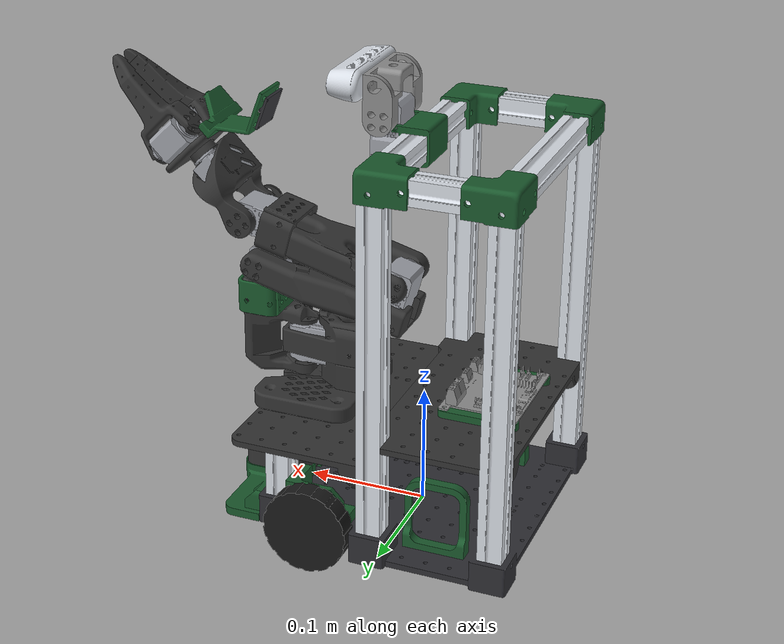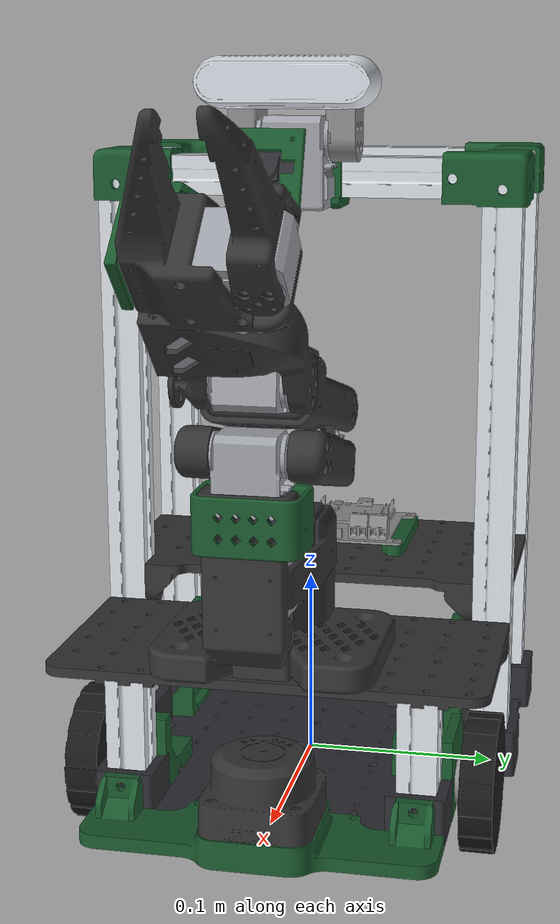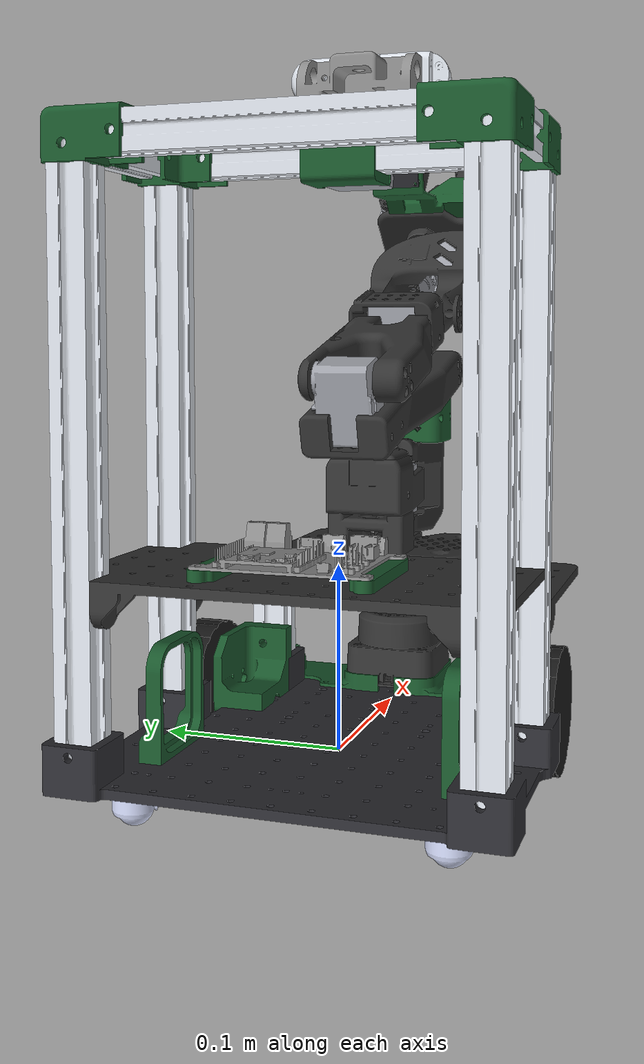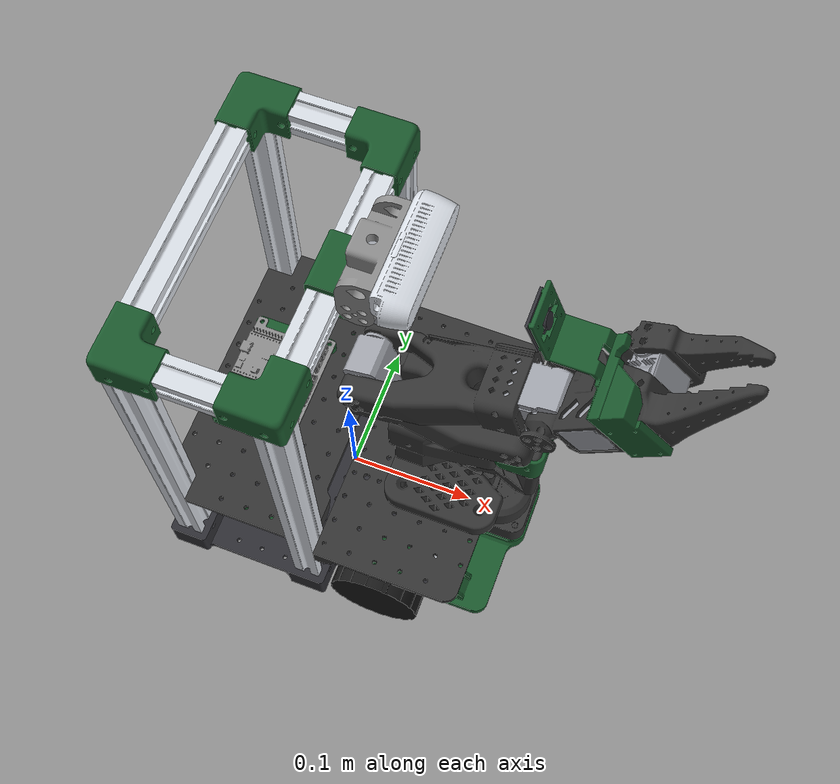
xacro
<?xml version="1.0" ?>
<robot name="llmy_root" xmlns:xacro="http://www.ros.org/wiki/xacro">

  <!-- use_sim: when true, pulls in Gazebo ros2_control + sdf extensions.
       Hardware launches should override to false. -->
  <xacro:arg name="use_sim" default="true"/>

  <xacro:include filename="$(find llmy_description)/urdf/materials.xacro" />
  <xacro:if value="$(arg use_sim)">
    <xacro:include filename="$(find llmy_description)/urdf/LLMy.ros2control" />
    <xacro:include filename="$(find llmy_description)/urdf/LLMy.gazebo" />
  </xacro:if>
  <!-- ========================================== LINKS ==========================================-->
  <link name="base_link">
    <inertial>
      <origin xyz="-0.003179 -0.000009 0.005401" rpy="0 0 0"/>
      <mass value="2.227457140108448"/>
      <inertia ixx="0.010888" iyy="0.009782" izz="0.020514" ixy="-5e-06" iyz="0.0" ixz="-3.3e-05"/>
    </inertial>
    <visual>
      <origin xyz="0.000000 0.000000 0.000000" rpy="0 0 0"/>
      <geometry><mesh filename="file://$(find llmy_description)/meshes/base_link.stl" scale="0.001 0.001 0.001"/></geometry>
      <material name="nylon_darkgrey"/>
    </visual>
    <collision>
      <origin xyz="0.000000 0.000000 0.000000" rpy="0 0 0"/>
      <geometry><mesh filename="file://$(find llmy_description)/meshes/base_link.stl" scale="0.001 0.001 0.001"/></geometry>
    </collision>
  </link>

  <link name="right_motor_mount_1">
    <inertial>
      <origin xyz="0.023782 0.003969 0.015577" rpy="0 0 0"/>
      <mass value="0.19524814724461273"/>
      <inertia ixx="4.7e-05" iyy="7.3e-05" izz="6.1e-05" ixy="-5e-06" iyz="5e-06" ixz="-1.5e-05"/>
    </inertial>
    <visual>
      <origin xyz="-0.040000 0.080000 -0.005000" rpy="0 0 0"/>
      <geometry><mesh filename="file://$(find llmy_description)/meshes/right_motor_mount_1.stl" scale="0.001 0.001 0.001"/></geometry>
      <material name="metallic_green"/>
    </visual>
    <collision>
      <origin xyz="-0.040000 0.080000 -0.005000" rpy="0 0 0"/>
      <geometry><mesh filename="file://$(find llmy_description)/meshes/right_motor_mount_1.stl" scale="0.001 0.001 0.001"/></geometry>
    </collision>
  </link>

  <link name="right_motor_1">
    <inertial>
      <origin xyz="-0.007742 -0.010688 -0.004446" rpy="0 0 0"/>
      <mass value="0.06550661857714346"/>
      <inertia ixx="4e-06" iyy="5e-06" izz="4e-06" ixy="0.0" iyz="-0.0" ixz="-0.0"/>
    </inertial>
    <visual>
      <origin xyz="-0.067864 0.085855 -0.018700" rpy="0 0 0"/>
      <geometry><mesh filename="file://$(find llmy_description)/meshes/wheel_right_in_1.stl" scale="0.001 0.001 0.001"/></geometry>
      <material name="generic_grey"/>
    </visual>
    <collision>
      <origin xyz="-0.067864 0.085855 -0.018700" rpy="0 0 0"/>
      <geometry><mesh filename="file://$(find llmy_description)/meshes/wheel_right_in_1.stl" scale="0.001 0.001 0.001"/></geometry>
    </collision>
  </link>

  <link name="wheel_right_1">
    <inertial>
      <origin xyz="-0.000000 0.003281 0.000000" rpy="0 0 0"/>
      <mass value="0.47698614111454785"/>
      <inertia ixx="0.000173" iyy="0.000323" izz="0.000173" ixy="0.0" iyz="0.0" ixz="0.0"/>
    </inertial>
    <visual>
      <origin xyz="-0.060143 0.105270 -0.014242" rpy="0 0 0"/>
      <geometry><mesh filename="file://$(find llmy_description)/meshes/wheel_right_out_1.stl" scale="0.001 0.001 0.001"/></geometry>
      <material name="wheel_black"/>
    </visual>
    <collision>
      <origin xyz="-0.060143 0.105270 -0.014242" rpy="0 0 0"/>
      <geometry><mesh filename="file://$(find llmy_description)/meshes/wheel_right_out_1.stl" scale="0.001 0.001 0.001"/></geometry>
    </collision>
  </link>

  <link name="left_motor_mount_1">
    <inertial>
      <origin xyz="0.023783 -0.003969 0.015577" rpy="0 0 0"/>
      <mass value="0.19524842528531677"/>
      <inertia ixx="4.7e-05" iyy="7.3e-05" izz="6.1e-05" ixy="5e-06" iyz="-5e-06" ixz="-1.5e-05"/>
    </inertial>
    <visual>
      <origin xyz="-0.040000 -0.080000 -0.005000" rpy="0 0 0"/>
      <geometry><mesh filename="file://$(find llmy_description)/meshes/left_motor_mount_1.stl" scale="0.001 0.001 0.001"/></geometry>
      <material name="metallic_green"/>
    </visual>
    <collision>
      <origin xyz="-0.040000 -0.080000 -0.005000" rpy="0 0 0"/>
      <geometry><mesh filename="file://$(find llmy_description)/meshes/left_motor_mount_1.stl" scale="0.001 0.001 0.001"/></geometry>
    </collision>
  </link>

  <link name="left_motor_1">
    <inertial>
      <origin xyz="0.007701 0.010688 -0.004446" rpy="0 0 0"/>
      <mass value="0.06550661857714346"/>
      <inertia ixx="4e-06" iyy="5e-06" izz="4e-06" ixy="-0.0" iyz="0.0" ixz="-0.0"/>
    </inertial>
    <visual>
      <origin xyz="-0.052275 -0.085855 -0.018700" rpy="0 0 0"/>
      <geometry><mesh filename="file://$(find llmy_description)/meshes/wheel_left_in_1.stl" scale="0.001 0.001 0.001"/></geometry>
      <material name="generic_grey"/>
    </visual>
    <collision>
      <origin xyz="-0.052275 -0.085855 -0.018700" rpy="0 0 0"/>
      <geometry><mesh filename="file://$(find llmy_description)/meshes/wheel_left_in_1.stl" scale="0.001 0.001 0.001"/></geometry>
    </collision>
  </link>

  <link name="wheel_left_1">
    <inertial>
      <origin xyz="0.000000 -0.003281 0.000000" rpy="0 0 0"/>
      <mass value="0.47698614111454785"/>
      <inertia ixx="0.000173" iyy="0.000323" izz="0.000173" ixy="-0.0" iyz="0.0" ixz="0.0"/>
    </inertial>
    <visual>
      <origin xyz="-0.059996 -0.105270 -0.014242" rpy="0 0 0"/>
      <geometry><mesh filename="file://$(find llmy_description)/meshes/wheel_left_out_1.stl" scale="0.001 0.001 0.001"/></geometry>
      <material name="wheel_black"/>
    </visual>
    <collision>
      <origin xyz="-0.059996 -0.105270 -0.014242" rpy="0 0 0"/>
      <geometry><mesh filename="file://$(find llmy_description)/meshes/wheel_left_out_1.stl" scale="0.001 0.001 0.001"/></geometry>
    </collision>
  </link>

  <link name="right_caster_1">
    <inertial>
      <origin xyz="-0.000000 0.007747 -0.008951" rpy="0 0 0"/>
      <mass value="0.04903387471960177"/>
      <inertia ixx="3e-06" iyy="3e-06" izz="3e-06" ixy="-0.0" iyz="0.0" ixz="0.0"/>
    </inertial>
    <visual>
      <origin xyz="0.080000 -0.072253 0.000000" rpy="0 0 0"/>
      <geometry><mesh filename="file://$(find llmy_description)/meshes/right_caster_1.stl" scale="0.001 0.001 0.001"/></geometry>
      <material name="caster_blue"/>
    </visual>
    <collision>
      <origin xyz="0.080000 -0.072253 0.000000" rpy="0 0 0"/>
      <geometry><mesh filename="file://$(find llmy_description)/meshes/right_caster_1.stl" scale="0.001 0.001 0.001"/></geometry>
    </collision>
  </link>

  <link name="left_caster_1">
    <inertial>
      <origin xyz="-0.000000 -0.007747 -0.008951" rpy="0 0 0"/>
      <mass value="0.04903387471960177"/>
      <inertia ixx="3e-06" iyy="3e-06" izz="3e-06" ixy="-0.0" iyz="0.0" ixz="0.0"/>
    </inertial>
    <visual>
      <origin xyz="0.080000 0.072253 0.000000" rpy="0 0 0"/>
      <geometry><mesh filename="file://$(find llmy_description)/meshes/left_caster_1.stl" scale="0.001 0.001 0.001"/></geometry>
      <material name="caster_blue"/>
    </visual>
    <collision>
      <origin xyz="0.080000 0.072253 0.000000" rpy="0 0 0"/>
      <geometry><mesh filename="file://$(find llmy_description)/meshes/left_caster_1.stl" scale="0.001 0.001 0.001"/></geometry>
    </collision>
  </link>

  <link name="right_baseus_mount_v1_1">
    <inertial>
      <origin xyz="0.019691 -0.001860 0.023385" rpy="0 0 0"/>
      <mass value="0.0655308096957003"/>
      <inertia ixx="3.1e-05" iyy="5.4e-05" izz="2.4e-05" ixy="0.0" iyz="1e-06" ixz="-0.0"/>
    </inertial>
    <visual>
      <origin xyz="0.060000 -0.080000 -0.005000" rpy="0 0 0"/>
      <geometry><mesh filename="file://$(find llmy_description)/meshes/right_battery_mount_1.stl" scale="0.001 0.001 0.001"/></geometry>
      <material name="metallic_green"/>
    </visual>
    <collision>
      <origin xyz="0.060000 -0.080000 -0.005000" rpy="0 0 0"/>
      <geometry><mesh filename="file://$(find llmy_description)/meshes/right_battery_mount_1.stl" scale="0.001 0.001 0.001"/></geometry>
    </collision>
  </link>

  <link name="left_baseus_mount_v1_1">
    <inertial>
      <origin xyz="0.019691 0.001860 0.023385" rpy="0 0 0"/>
      <mass value="0.06553077893811926"/>
      <inertia ixx="3.1e-05" iyy="5.4e-05" izz="2.4e-05" ixy="-0.0" iyz="-1e-06" ixz="-0.0"/>
    </inertial>
    <visual>
      <origin xyz="0.060000 0.080000 -0.005000" rpy="0 0 0"/>
      <geometry><mesh filename="file://$(find llmy_description)/meshes/left_battery_mount_1.stl" scale="0.001 0.001 0.001"/></geometry>
      <material name="metallic_green"/>
    </visual>
    <collision>
      <origin xyz="0.060000 0.080000 -0.005000" rpy="0 0 0"/>
      <geometry><mesh filename="file://$(find llmy_description)/meshes/left_battery_mount_1.stl" scale="0.001 0.001 0.001"/></geometry>
    </collision>
  </link>

  <link name="llmy_lidar_base_v1_1">
    <inertial>
      <origin xyz="0.015962 -0.073645 -0.015094" rpy="0 0 0"/>
      <mass value="0.3979913592232491"/>
      <inertia ixx="0.001129" iyy="6.9e-05" izz="0.001183" ixy="-0.0" iyz="-0.0" ixz="6e-06"/>
    </inertial>
    <visual>
      <origin xyz="-0.110000 -0.073755 -0.020000" rpy="0 0 0"/>
      <geometry><mesh filename="file://$(find llmy_description)/meshes/lidar_mount_1.stl" scale="0.001 0.001 0.001"/></geometry>
      <material name="metallic_green"/>
    </visual>
    <collision>
      <origin xyz="-0.110000 -0.073755 -0.020000" rpy="0 0 0"/>
      <geometry><mesh filename="file://$(find llmy_description)/meshes/lidar_mount_1.stl" scale="0.001 0.001 0.001"/></geometry>
    </collision>
  </link>

  <link name="lidar_1">
    <inertial>
      <origin xyz="-0.021415 -0.021595 0.014018" rpy="0 0 0"/>
      <mass value="0.2536750002862165"/>
      <inertia ixx="0.000111" iyy="0.000111" izz="0.000157" ixy="-0.0" iyz="-0.0" ixz="0.0"/>
    </inertial>
    <visual>
      <origin xyz="-0.145700 -0.023250 -0.008000" rpy="0 0 0"/>
      <geometry><mesh filename="file://$(find llmy_description)/meshes/lidar_1.stl" scale="0.001 0.001 0.001"/></geometry>
      <material name="epx_darkgrey"/>
    </visual>
    <collision>
      <origin xyz="-0.145700 -0.023250 -0.008000" rpy="0 0 0"/>
      <geometry><mesh filename="file://$(find llmy_description)/meshes/lidar_1.stl" scale="0.001 0.001 0.001"/></geometry>
    </collision>
  </link>

  <link name="frame_short_right">
    <inertial>
      <origin xyz="-0.000000 0.000000 0.037500" rpy="0 0 0"/>
      <mass value="0.10216504467841848"/>
      <inertia ixx="5.2e-05" iyy="5.2e-05" izz="9e-06" ixy="-0.0" iyz="-0.0" ixz="-0.0"/>
    </inertial>
    <visual>
      <origin xyz="-0.095000 0.073755 -0.005000" rpy="0 0 0"/>
      <geometry><mesh filename="file://$(find llmy_description)/meshes/short_2020_1.stl" scale="0.001 0.001 0.001"/></geometry>
      <material name="aluminum_polished"/>
    </visual>
    <collision>
      <origin xyz="-0.095000 0.073755 -0.005000" rpy="0 0 0"/>
      <geometry><mesh filename="file://$(find llmy_description)/meshes/short_2020_1.stl" scale="0.001 0.001 0.001"/></geometry>
    </collision>
  </link>

  <link name="frame_short_left">
    <inertial>
      <origin xyz="-0.000000 -0.000000 0.037500" rpy="0 0 0"/>
      <mass value="0.10216504467841848"/>
      <inertia ixx="5.2e-05" iyy="5.2e-05" izz="9e-06" ixy="-0.0" iyz="-0.0" ixz="-0.0"/>
    </inertial>
    <visual>
      <origin xyz="-0.095000 -0.073755 -0.005000" rpy="0 0 0"/>
      <geometry><mesh filename="file://$(find llmy_description)/meshes/short_2020__1__1.stl" scale="0.001 0.001 0.001"/></geometry>
      <material name="aluminum_polished"/>
    </visual>
    <collision>
      <origin xyz="-0.095000 -0.073755 -0.005000" rpy="0 0 0"/>
      <geometry><mesh filename="file://$(find llmy_description)/meshes/short_2020__1__1.stl" scale="0.001 0.001 0.001"/></geometry>
    </collision>
  </link>

  <link name="frame_tall_bl">
    <inertial>
      <origin xyz="-0.000016 0.000013 0.001354" rpy="0 0 0"/>
      <mass value="0.4366746675159977"/>
      <inertia ixx="0.003758" iyy="0.003758" izz="3.7e-05" ixy="-0.0" iyz="-0.0" ixz="-0.0"/>
    </inertial>
    <visual>
      <origin xyz="0.094984 -0.099987 -0.163929" rpy="0 0 0"/>
      <geometry><mesh filename="file://$(find llmy_description)/meshes/tall_2020_1.stl" scale="0.001 0.001 0.001"/></geometry>
      <material name="aluminum_polished"/>
    </visual>
    <collision>
      <origin xyz="0.094984 -0.099987 -0.163929" rpy="0 0 0"/>
      <geometry><mesh filename="file://$(find llmy_description)/meshes/tall_2020_1.stl" scale="0.001 0.001 0.001"/></geometry>
    </collision>
  </link>

  <link name="frame_tall_br">
    <inertial>
      <origin xyz="-0.000016 0.000013 0.001354" rpy="0 0 0"/>
      <mass value="0.4366746675159977"/>
      <inertia ixx="0.003758" iyy="0.003758" izz="3.7e-05" ixy="-0.0" iyz="-0.0" ixz="-0.0"/>
    </inertial>
    <visual>
      <origin xyz="0.094984 0.100013 -0.163929" rpy="0 0 0"/>
      <geometry><mesh filename="file://$(find llmy_description)/meshes/tall_2020_2.stl" scale="0.001 0.001 0.001"/></geometry>
      <material name="aluminum_polished"/>
    </visual>
    <collision>
      <origin xyz="0.094984 0.100013 -0.163929" rpy="0 0 0"/>
      <geometry><mesh filename="file://$(find llmy_description)/meshes/tall_2020_2.stl" scale="0.001 0.001 0.001"/></geometry>
    </collision>
  </link>

  <link name="frame_tall_fr">
    <inertial>
      <origin xyz="-0.000016 0.000013 0.001354" rpy="0 0 0"/>
      <mass value="0.4366746675159977"/>
      <inertia ixx="0.003758" iyy="0.003758" izz="3.7e-05" ixy="-0.0" iyz="-0.0" ixz="-0.0"/>
    </inertial>
    <visual>
      <origin xyz="-0.005005 0.100013 -0.163929" rpy="0 0 0"/>
      <geometry><mesh filename="file://$(find llmy_description)/meshes/tall_2020_3.stl" scale="0.001 0.001 0.001"/></geometry>
      <material name="aluminum_polished"/>
    </visual>
    <collision>
      <origin xyz="-0.005005 0.100013 -0.163929" rpy="0 0 0"/>
      <geometry><mesh filename="file://$(find llmy_description)/meshes/tall_2020_3.stl" scale="0.001 0.001 0.001"/></geometry>
    </collision>
  </link>

  <link name="frame_tall_fl">
    <inertial>
      <origin xyz="-0.000016 0.000013 0.001354" rpy="0 0 0"/>
      <mass value="0.4366746675159977"/>
      <inertia ixx="0.003758" iyy="0.003758" izz="3.7e-05" ixy="-0.0" iyz="-0.0" ixz="-0.0"/>
    </inertial>
    <visual>
      <origin xyz="-0.005005 -0.099987 -0.163929" rpy="0 0 0"/>
      <geometry><mesh filename="file://$(find llmy_description)/meshes/tall_2020_4.stl" scale="0.001 0.001 0.001"/></geometry>
      <material name="aluminum_polished"/>
    </visual>
    <collision>
      <origin xyz="-0.005005 -0.099987 -0.163929" rpy="0 0 0"/>
      <geometry><mesh filename="file://$(find llmy_description)/meshes/tall_2020_4.stl" scale="0.001 0.001 0.001"/></geometry>
    </collision>
  </link>

  <link name="frame_corner_bl">
    <inertial>
      <origin xyz="0.015203 -0.015203 -0.008098" rpy="0 0 0"/>
      <mass value="0.10970209412418161"/>
      <inertia ixx="2.3e-05" iyy="2.3e-05" izz="3.2e-05" ixy="-3e-06" iyz="1e-06" ixz="-1e-06"/>
    </inertial>
    <visual>
      <origin xyz="0.105000 -0.110000 -0.325564" rpy="0 0 0"/>
      <geometry><mesh filename="file://$(find llmy_description)/meshes/Extrusion_3_way__joint_v1__2___2___1__1.stl" scale="0.001 0.001 0.001"/></geometry>
      <material name="metallic_green"/>
    </visual>
    <collision>
      <origin xyz="0.105000 -0.110000 -0.325564" rpy="0 0 0"/>
      <geometry><mesh filename="file://$(find llmy_description)/meshes/Extrusion_3_way__joint_v1__2___2___1__1.stl" scale="0.001 0.001 0.001"/></geometry>
    </collision>
  </link>

  <link name="frame_corner_br">
    <inertial>
      <origin xyz="0.000035 -0.000153 -0.005437" rpy="0 0 0"/>
      <mass value="0.10970209412418161"/>
      <inertia ixx="2.3e-05" iyy="2.3e-05" izz="3.2e-05" ixy="3e-06" iyz="-1e-06" ixz="-1e-06"/>
    </inertial>
    <visual>
      <origin xyz="0.089832 0.094644 -0.322902" rpy="0 0 0"/>
      <geometry><mesh filename="file://$(find llmy_description)/meshes/Extrusion_3_way__joint_v1__2___2__1.stl" scale="0.001 0.001 0.001"/></geometry>
      <material name="metallic_green"/>
    </visual>
    <collision>
      <origin xyz="0.089832 0.094644 -0.322902" rpy="0 0 0"/>
      <geometry><mesh filename="file://$(find llmy_description)/meshes/Extrusion_3_way__joint_v1__2___2__1.stl" scale="0.001 0.001 0.001"/></geometry>
    </collision>
  </link>

  <link name="frame_corner_fr">
    <inertial>
      <origin xyz="0.000153 0.000035 -0.005437" rpy="0 0 0"/>
      <mass value="0.10970209412418161"/>
      <inertia ixx="2.3e-05" iyy="2.3e-05" izz="3.2e-05" ixy="-3e-06" iyz="-1e-06" ixz="1e-06"/>
    </inertial>
    <visual>
      <origin xyz="0.000367 0.094832 -0.322902" rpy="0 0 0"/>
      <geometry><mesh filename="file://$(find llmy_description)/meshes/Extrusion_3_way__joint_v1__2__1.stl" scale="0.001 0.001 0.001"/></geometry>
      <material name="metallic_green"/>
    </visual>
    <collision>
      <origin xyz="0.000367 0.094832 -0.322902" rpy="0 0 0"/>
      <geometry><mesh filename="file://$(find llmy_description)/meshes/Extrusion_3_way__joint_v1__2__1.stl" scale="0.001 0.001 0.001"/></geometry>
    </collision>
  </link>

  <link name="frame_corner_fl">
    <inertial>
      <origin xyz="-0.000035 0.000153 -0.005437" rpy="0 0 0"/>
      <mass value="0.10970209412418161"/>
      <inertia ixx="2.3e-05" iyy="2.3e-05" izz="3.2e-05" ixy="3e-06" iyz="1e-06" ixz="1e-06"/>
    </inertial>
    <visual>
      <origin xyz="0.000179 -0.094644 -0.322902" rpy="0 0 0"/>
      <geometry><mesh filename="file://$(find llmy_description)/meshes/Extrusion_3_way__joint_v1__2___1__1.stl" scale="0.001 0.001 0.001"/></geometry>
      <material name="metallic_green"/>
    </visual>
    <collision>
      <origin xyz="0.000179 -0.094644 -0.322902" rpy="0 0 0"/>
      <geometry><mesh filename="file://$(find llmy_description)/meshes/Extrusion_3_way__joint_v1__2___1__1.stl" scale="0.001 0.001 0.001"/></geometry>
    </collision>
  </link>

  <link name="frame_top_left">
    <inertial>
      <origin xyz="-0.037503 -0.010000 -0.010000" rpy="0 0 0"/>
      <mass value="0.10217290955264358"/>
      <inertia ixx="9e-06" iyy="5.2e-05" izz="5.2e-05" ixy="-0.0" iyz="-0.0" ixz="0.0"/>
    </inertial>
    <visual>
      <origin xyz="0.007511 -0.110000 -0.325564" rpy="0 0 0"/>
      <geometry><mesh filename="file://$(find llmy_description)/meshes/horizontal_2020__1__1.stl" scale="0.001 0.001 0.001"/></geometry>
      <material name="aluminum_polished"/>
    </visual>
    <collision>
      <origin xyz="0.007511 -0.110000 -0.325564" rpy="0 0 0"/>
      <geometry><mesh filename="file://$(find llmy_description)/meshes/horizontal_2020__1__1.stl" scale="0.001 0.001 0.001"/></geometry>
    </collision>
  </link>

  <link name="frame_top_right">
    <inertial>
      <origin xyz="0.037503 -0.010000 -0.010000" rpy="0 0 0"/>
      <mass value="0.10217290955264216"/>
      <inertia ixx="9e-06" iyy="5.2e-05" izz="5.2e-05" ixy="-0.0" iyz="0.0" ixz="-0.0"/>
    </inertial>
    <visual>
      <origin xyz="0.082500 0.090000 -0.325564" rpy="0 0 0"/>
      <geometry><mesh filename="file://$(find llmy_description)/meshes/horizontal_2020__1___1__1.stl" scale="0.001 0.001 0.001"/></geometry>
      <material name="aluminum_polished"/>
    </visual>
    <collision>
      <origin xyz="0.082500 0.090000 -0.325564" rpy="0 0 0"/>
      <geometry><mesh filename="file://$(find llmy_description)/meshes/horizontal_2020__1___1__1.stl" scale="0.001 0.001 0.001"/></geometry>
    </collision>
  </link>

  <link name="frame_top_front">
    <inertial>
      <origin xyz="-0.000000 0.001110 -0.000021" rpy="0 0 0"/>
      <mass value="0.24520450336283997"/>
      <inertia ixx="0.000672" iyy="2.1e-05" izz="0.000672" ixy="0.0" iyz="-0.0" ixz="0.0"/>
    </inertial>
    <visual>
      <origin xyz="-0.004989 0.003613 -0.315586" rpy="0 0 0"/>
      <geometry><mesh filename="file://$(find llmy_description)/meshes/horizontal_2020__2__1.stl" scale="0.001 0.001 0.001"/></geometry>
      <material name="aluminum_polished"/>
    </visual>
    <collision>
      <origin xyz="-0.004989 0.003613 -0.315586" rpy="0 0 0"/>
      <geometry><mesh filename="file://$(find llmy_description)/meshes/horizontal_2020__2__1.stl" scale="0.001 0.001 0.001"/></geometry>
    </collision>
  </link>

  <link name="frame_top_back">
    <inertial>
      <origin xyz="-0.000000 0.001110 -0.000021" rpy="0 0 0"/>
      <mass value="0.24520450336283853"/>
      <inertia ixx="0.000672" iyy="2.1e-05" izz="0.000672" ixy="0.0" iyz="-0.0" ixz="0.0"/>
    </inertial>
    <visual>
      <origin xyz="0.095000 0.003613 -0.315586" rpy="0 0 0"/>
      <geometry><mesh filename="file://$(find llmy_description)/meshes/horizontal_2020_2.stl" scale="0.001 0.001 0.001"/></geometry>
      <material name="aluminum_polished"/>
    </visual>
    <collision>
      <origin xyz="0.095000 0.003613 -0.315586" rpy="0 0 0"/>
      <geometry><mesh filename="file://$(find llmy_description)/meshes/horizontal_2020_2.stl" scale="0.001 0.001 0.001"/></geometry>
    </collision>
  </link>

  <link name="modular_floor">
    <inertial>
      <origin xyz="0.000377 -0.000021 0.002032" rpy="0 0 0"/>
      <mass value="1.0019171702370486"/>
      <inertia ixx="0.004015" iyy="0.001177" izz="0.00517" ixy="0.0" iyz="-0.0" ixz="1e-06"/>
    </inertial>
    <visual>
      <origin xyz="0.046862 -0.000021 -0.099702" rpy="0 0 0"/>
      <geometry><mesh filename="file://$(find llmy_description)/meshes/modular_floor__1__1.stl" scale="0.001 0.001 0.001"/></geometry>
      <material name="epx_darkgrey"/>
    </visual>
    <collision>
      <origin xyz="0.046862 -0.000021 -0.099702" rpy="0 0 0"/>
      <geometry><mesh filename="file://$(find llmy_description)/meshes/modular_floor__1__1.stl" scale="0.001 0.001 0.001"/></geometry>
    </collision>
  </link>

  <link name="arm_deck">
    <inertial>
      <origin xyz="-0.034948 -0.063790 0.001500" rpy="0 0 0"/>
      <mass value="1.0374481926829444"/>
      <inertia ixx="0.00459" iyy="0.001075" izz="0.005642" ixy="2e-06" iyz="0.0" ixz="-6e-06"/>
    </inertial>
    <visual>
      <origin xyz="-0.105000 -0.063755 -0.080000" rpy="0 0 0"/>
      <geometry><mesh filename="file://$(find llmy_description)/meshes/second_floor_1.stl" scale="0.001 0.001 0.001"/></geometry>
      <material name="epx_darkgrey"/>
    </visual>
    <collision>
      <origin xyz="-0.105000 -0.063755 -0.080000" rpy="0 0 0"/>
      <geometry><mesh filename="file://$(find llmy_description)/meshes/second_floor_1.stl" scale="0.001 0.001 0.001"/></geometry>
    </collision>
  </link>

  <link name="electronics_holder_left">
    <inertial>
      <origin xyz="-0.000000 0.000276 0.000167" rpy="0 0 0"/>
      <mass value="0.034361014922221385"/>
      <inertia ixx="1e-06" iyy="1.1e-05" izz="1.1e-05" ixy="0.0" iyz="-0.0" ixz="-0.0"/>
    </inertial>
    <visual>
      <origin xyz="0.060121 0.040307 -0.107851" rpy="0 0 0"/>
      <geometry><mesh filename="file://$(find llmy_description)/meshes/axon_left_holder_1.stl" scale="0.001 0.001 0.001"/></geometry>
      <material name="metallic_green"/>
    </visual>
    <collision>
      <origin xyz="0.060121 0.040307 -0.107851" rpy="0 0 0"/>
      <geometry><mesh filename="file://$(find llmy_description)/meshes/axon_left_holder_1.stl" scale="0.001 0.001 0.001"/></geometry>
    </collision>
  </link>

  <link name="electronics_holder_right">
    <inertial>
      <origin xyz="0.019879 0.000031 0.003018" rpy="0 0 0"/>
      <mass value="0.03436101492222138"/>
      <inertia ixx="1e-06" iyy="1.1e-05" izz="1.1e-05" ixy="-0.0" iyz="0.0" ixz="-0.0"/>
    </inertial>
    <visual>
      <origin xyz="0.080000 -0.040000 -0.105000" rpy="0 0 0"/>
      <geometry><mesh filename="file://$(find llmy_description)/meshes/axon_right_holder_1.stl" scale="0.001 0.001 0.001"/></geometry>
      <material name="metallic_green"/>
    </visual>
    <collision>
      <origin xyz="0.080000 -0.040000 -0.105000" rpy="0 0 0"/>
      <geometry><mesh filename="file://$(find llmy_description)/meshes/axon_right_holder_1.stl" scale="0.001 0.001 0.001"/></geometry>
    </collision>
  </link>

  <link name="electronics_pcb">
    <inertial>
      <origin xyz="-0.025501 0.043997 0.003178" rpy="0 0 0"/>
      <mass value="0.119078660615479"/>
      <inertia ixx="6.1e-05" iyy="4.8e-05" izz="0.000107" ixy="-1e-06" iyz="-2e-06" ixz="-2e-06"/>
    </inertial>
    <visual>
      <origin xyz="0.031900 0.041300 -0.111000" rpy="0 0 0"/>
      <geometry><mesh filename="file://$(find llmy_description)/meshes/axon_pcb_1.stl" scale="0.001 0.001 0.001"/></geometry>
      <material name="generic_grey"/>
    </visual>
    <collision>
      <origin xyz="0.031900 0.041300 -0.111000" rpy="0 0 0"/>
      <geometry><mesh filename="file://$(find llmy_description)/meshes/axon_pcb_1.stl" scale="0.001 0.001 0.001"/></geometry>
    </collision>
  </link>

  <link name="imu_1">
    <inertial>
      <origin xyz="-0.000000 0.000000 -0.000000" rpy="0 0 0"/>
      <mass value="5.12084204309999e-05"/>
      <inertia ixx="0.0" iyy="0.0" izz="0.0" ixy="0.0" iyz="0.0" ixz="0.0"/>
    </inertial>
    <visual>
      <origin xyz="0.059900 0.000100 -0.112894" rpy="0 0 0"/>
      <geometry><mesh filename="file://$(find llmy_description)/meshes/imu_1.stl" scale="0.001 0.001 0.001"/></geometry>
      <material name="generic_grey"/>
    </visual>
    <collision>
      <origin xyz="0.059900 0.000100 -0.112894" rpy="0 0 0"/>
      <geometry><mesh filename="file://$(find llmy_description)/meshes/imu_1.stl" scale="0.001 0.001 0.001"/></geometry>
    </collision>
  </link>

  <link name="support_v1_1">
    <inertial>
      <origin xyz="-0.010512 0.001434 -0.002157" rpy="0 0 0"/>
      <mass value="0.1140352121391571"/>
      <inertia ixx="3e-05" iyy="2.3e-05" izz="2.5e-05" ixy="0.0" iyz="0.0" ixz="0.0"/>
    </inertial>
    <visual>
      <origin xyz="-0.017109 0.002772 -0.317701" rpy="0 0 0"/>
      <geometry><mesh filename="file://$(find llmy_description)/meshes/camera_holder_1.stl" scale="0.001 0.001 0.001"/></geometry>
      <material name="metallic_green"/>
    </visual>
    <collision>
      <origin xyz="-0.017109 0.002772 -0.317701" rpy="0 0 0"/>
      <geometry><mesh filename="file://$(find llmy_description)/meshes/camera_holder_1.stl" scale="0.001 0.001 0.001"/></geometry>
    </collision>
  </link>

  <link name="tilt_servo_1">
    <inertial>
      <origin xyz="0.000003 0.004966 -0.001859" rpy="0 0 0"/>
      <mass value="0.28430338319040643"/>
      <inertia ixx="7.3e-05" iyy="6.2e-05" izz="4e-05" ixy="0.0" iyz="1e-06" ixz="-0.0"/>
    </inertial>
    <visual>
      <origin xyz="-0.031036 0.006193 -0.325123" rpy="0 0 0"/>
      <geometry><mesh filename="file://$(find llmy_description)/meshes/tilt_servo_1.stl" scale="0.001 0.001 0.001"/></geometry>
      <material name="steel_satin"/>
    </visual>
    <collision>
      <origin xyz="-0.031036 0.006193 -0.325123" rpy="0 0 0"/>
      <geometry><mesh filename="file://$(find llmy_description)/meshes/tilt_servo_1.stl" scale="0.001 0.001 0.001"/></geometry>
    </collision>
  </link>

  <link name="realsense_support_v1_1">
    <inertial>
      <origin xyz="0.001365 0.000867 0.003617" rpy="0 0 0"/>
      <mass value="0.22381597612221305"/>
      <inertia ixx="0.000145" iyy="4.8e-05" izz="0.00012" ixy="0.0" iyz="0.0" ixz="-3e-06"/>
    </inertial>
    <visual>
      <origin xyz="-0.030561 0.001874 -0.346942" rpy="0 0 0"/>
      <geometry><mesh filename="file://$(find llmy_description)/meshes/realsense_support_v1_1.stl" scale="0.001 0.001 0.001"/></geometry>
      <material name="generic_grey"/>
    </visual>
    <collision>
      <origin xyz="-0.030561 0.001874 -0.346942" rpy="0 0 0"/>
      <geometry><mesh filename="file://$(find llmy_description)/meshes/realsense_support_v1_1.stl" scale="0.001 0.001 0.001"/></geometry>
    </collision>
  </link>

  <link name="head_camera_1">
    <inertial>
      <origin xyz="0.012450 0.023612 0.000079" rpy="0 0 0"/>
      <mass value="0.35928853728306875"/>
      <inertia ixx="0.000217" iyy="3.3e-05" izz="0.000219" ixy="3e-06" iyz="0.0" ixz="0.0"/>
    </inertial>
    <visual>
      <origin xyz="-0.042808 0.023600 -0.362633" rpy="0 0 0"/>
      <geometry><mesh filename="file://$(find llmy_description)/meshes/head_camera_1.stl" scale="0.001 0.001 0.001"/></geometry>
      <material name="aluminum_polished"/>
    </visual>
    <collision>
      <origin xyz="-0.042808 0.023600 -0.362633" rpy="0 0 0"/>
      <geometry><mesh filename="file://$(find llmy_description)/meshes/head_camera_1.stl" scale="0.001 0.001 0.001"/></geometry>
    </collision>
  </link>

  <link name="wrist_camera_mount_1">
    <inertial>
      <origin xyz="0.018723 0.016926 0.040210" rpy="0 0 0"/>
      <mass value="0.16746945951855144"/>
      <inertia ixx="0.000154" iyy="0.000123" izz="9e-05" ixy="-2.3e-05" iyz="-5.9e-05" ixz="-3.8e-05"/>
    </inertial>
    <visual>
      <origin xyz="-0.192600 0.030651 -0.156098" rpy="0 0 0"/>
      <geometry><mesh filename="file://$(find llmy_description)/meshes/wrist_camera_mod_v1_1.stl" scale="0.001 0.001 0.001"/></geometry>
      <material name="metallic_green"/>
    </visual>
    <collision>
      <origin xyz="-0.192600 0.030651 -0.156098" rpy="0 0 0"/>
      <geometry><mesh filename="file://$(find llmy_description)/meshes/wrist_camera_mod_v1_1.stl" scale="0.001 0.001 0.001"/></geometry>
    </collision>
  </link>

  <link name="wrist_camera_v1_1">
    <inertial>
      <origin xyz="-0.011624 -0.011956 -0.002981" rpy="0 0 0"/>
      <mass value="0.016638125458728874"/>
      <inertia ixx="1e-06" iyy="1e-06" izz="2e-06" ixy="-0.0" iyz="0.0" ixz="-0.0"/>
    </inertial>
    <visual>
      <origin xyz="-0.244772 -0.019184 -0.245986" rpy="0 0 0"/>
      <geometry><mesh filename="file://$(find llmy_description)/meshes/wrist_camera_v1_1.stl" scale="0.001 0.001 0.001"/></geometry>
      <material name="nylon_darkgrey"/>
    </visual>
    <collision>
      <origin xyz="-0.244772 -0.019184 -0.245986" rpy="0 0 0"/>
      <geometry><mesh filename="file://$(find llmy_description)/meshes/wrist_camera_v1_1.stl" scale="0.001 0.001 0.001"/></geometry>
    </collision>
  </link>

  <link name="arm_base_1">
    <inertial>
      <origin xyz="0.002562 -0.000293 -0.014922" rpy="0 0 0"/>
      <mass value="1.2829039880853146"/>
      <inertia ixx="0.001557" iyy="0.00136" izz="0.001775" ixy="0.0" iyz="0.0" ixz="0.000249"/>
    </inertial>
    <visual>
      <origin xyz="-0.067689 -0.000290 -0.121788" rpy="0 0 0"/>
      <geometry><mesh filename="file://$(find llmy_description)/meshes/arm_base_1.stl" scale="0.001 0.001 0.001"/></geometry>
      <material name="epx_darkgrey"/>
    </visual>
    <collision>
      <origin xyz="-0.067689 -0.000290 -0.121788" rpy="0 0 0"/>
      <geometry><mesh filename="file://$(find llmy_description)/meshes/arm_base_1.stl" scale="0.001 0.001 0.001"/></geometry>
    </collision>
  </link>

  <link name="arm_base_rotation_servo_1">
    <inertial>
      <origin xyz="0.016199 0.010250 -0.015773" rpy="0 0 0"/>
      <mass value="0.2843033831904074"/>
      <inertia ixx="4e-05" iyy="7.3e-05" izz="6.2e-05" ixy="0.0" iyz="0.0" ixz="-1e-06"/>
    </inertial>
    <visual>
      <origin xyz="-0.066848 0.010500 -0.144600" rpy="0 0 0"/>
      <geometry><mesh filename="file://$(find llmy_description)/meshes/arm_base_rotation_servo_1.stl" scale="0.001 0.001 0.001"/></geometry>
      <material name="steel_satin"/>
    </visual>
    <collision>
      <origin xyz="-0.066848 0.010500 -0.144600" rpy="0 0 0"/>
      <geometry><mesh filename="file://$(find llmy_description)/meshes/arm_base_rotation_servo_1.stl" scale="0.001 0.001 0.001"/></geometry>
    </collision>
  </link>

  <link name="arm_base_rotation_link_1">
    <inertial>
      <origin xyz="0.031556 -0.000272 -0.009541" rpy="0 0 0"/>
      <mass value="0.5385469320676795"/>
      <inertia ixx="0.000341" iyy="0.000375" izz="0.000154" ixy="-1e-06" iyz="3e-06" ixz="-3.6e-05"/>
    </inertial>
    <visual>
      <origin xyz="-0.095848 0.000250 -0.147400" rpy="0 0 0"/>
      <geometry><mesh filename="file://$(find llmy_description)/meshes/arm_base_rotation_link_1.stl" scale="0.001 0.001 0.001"/></geometry>
      <material name="epx_darkgrey"/>
    </visual>
    <collision>
      <origin xyz="-0.095848 0.000250 -0.147400" rpy="0 0 0"/>
      <geometry><mesh filename="file://$(find llmy_description)/meshes/arm_base_rotation_link_1.stl" scale="0.001 0.001 0.001"/></geometry>
    </collision>
  </link>

  <link name="arm_base_rotation_link_cover_1">
    <inertial>
      <origin xyz="-0.000130 -0.002744 0.000002" rpy="0 0 0"/>
      <mass value="0.10853073755546007"/>
      <inertia ixx="4.6e-05" iyy="2.7e-05" izz="5.8e-05" ixy="0.0" iyz="-0.0" ixz="0.0"/>
    </inertial>
    <visual>
      <origin xyz="-0.126834 -0.003844 -0.169455" rpy="0 0 0"/>
      <geometry><mesh filename="file://$(find llmy_description)/meshes/arm_base_rotation_link_cover_1.stl" scale="0.001 0.001 0.001"/></geometry>
      <material name="metallic_green"/>
    </visual>
    <collision>
      <origin xyz="-0.126834 -0.003844 -0.169455" rpy="0 0 0"/>
      <geometry><mesh filename="file://$(find llmy_description)/meshes/arm_base_rotation_link_cover_1.stl" scale="0.001 0.001 0.001"/></geometry>
    </collision>
  </link>

  <link name="arm_shoulder_servo_1">
    <inertial>
      <origin xyz="-0.010250 -0.016027 0.019999" rpy="0 0 0"/>
      <mass value="0.2843033831904074"/>
      <inertia ixx="7.3e-05" iyy="6.2e-05" izz="4e-05" ixy="0.0" iyz="1e-06" ixz="-0.0"/>
    </inertial>
    <visual>
      <origin xyz="-0.136698 -0.016050 -0.166800" rpy="0 0 0"/>
      <geometry><mesh filename="file://$(find llmy_description)/meshes/arm_shoulder_servo_1.stl" scale="0.001 0.001 0.001"/></geometry>
      <material name="steel_satin"/>
    </visual>
    <collision>
      <origin xyz="-0.136698 -0.016050 -0.166800" rpy="0 0 0"/>
      <geometry><mesh filename="file://$(find llmy_description)/meshes/arm_shoulder_servo_1.stl" scale="0.001 0.001 0.001"/></geometry>
    </collision>
  </link>

  <link name="arm_shoulder_link_1">
    <inertial>
      <origin xyz="-0.055943 0.019699 -0.015369" rpy="0 0 0"/>
      <mass value="0.9906249126045027"/>
      <inertia ixx="0.000563" iyy="0.001251" izz="0.001549" ixy="-8e-06" iyz="-3e-06" ixz="-0.000304"/>
    </inertial>
    <visual>
      <origin xyz="-0.126448 0.018550 -0.199600" rpy="0 0 0"/>
      <geometry><mesh filename="file://$(find llmy_description)/meshes/arm_shoulder_link_1.stl" scale="0.001 0.001 0.001"/></geometry>
      <material name="epx_darkgrey"/>
    </visual>
    <collision>
      <origin xyz="-0.126448 0.018550 -0.199600" rpy="0 0 0"/>
      <geometry><mesh filename="file://$(find llmy_description)/meshes/arm_shoulder_link_1.stl" scale="0.001 0.001 0.001"/></geometry>
    </collision>
  </link>

  <link name="arm_elbow_servo_1">
    <inertial>
      <origin xyz="0.004725 -0.016027 0.021971" rpy="0 0 0"/>
      <mass value="0.2843033831904074"/>
      <inertia ixx="7.1e-05" iyy="6.2e-05" izz="4.2e-05" ixy="-0.0" iyz="1e-06" ixz="8e-06"/>
    </inertial>
    <visual>
      <origin xyz="-0.009055 -0.017550 -0.163175" rpy="0 0 0"/>
      <geometry><mesh filename="file://$(find llmy_description)/meshes/arm_elbow_servo_1.stl" scale="0.001 0.001 0.001"/></geometry>
      <material name="steel_satin"/>
    </visual>
    <collision>
      <origin xyz="-0.009055 -0.017550 -0.163175" rpy="0 0 0"/>
      <geometry><mesh filename="file://$(find llmy_description)/meshes/arm_elbow_servo_1.stl" scale="0.001 0.001 0.001"/></geometry>
    </collision>
  </link>

  <link name="arm_elbow_link_1">
    <inertial>
      <origin xyz="0.059967 0.015215 0.016213" rpy="0 0 0"/>
      <mass value="0.8772447501056027"/>
      <inertia ixx="0.000428" iyy="0.000993" izz="0.00118" ixy="-0.000112" iyz="-3.1e-05" ixz="-0.000227"/>
    </inertial>
    <visual>
      <origin xyz="-0.010467 0.017050 -0.197510" rpy="0 0 0"/>
      <geometry><mesh filename="file://$(find llmy_description)/meshes/arm_elbow_link_1.stl" scale="0.001 0.001 0.001"/></geometry>
      <material name="epx_darkgrey"/>
    </visual>
    <collision>
      <origin xyz="-0.010467 0.017050 -0.197510" rpy="0 0 0"/>
      <geometry><mesh filename="file://$(find llmy_description)/meshes/arm_elbow_link_1.stl" scale="0.001 0.001 0.001"/></geometry>
    </collision>
  </link>

  <link name="arm_wrist_tilt_servo_1">
    <inertial>
      <origin xyz="0.021475 -0.016027 -0.006621" rpy="0 0 0"/>
      <mass value="0.2843033831904074"/>
      <inertia ixx="4.1e-05" iyy="6.2e-05" izz="7.2e-05" ixy="1e-06" iyz="0.0" ixz="-6e-06"/>
    </inertial>
    <visual>
      <origin xyz="-0.106055 -0.019050 -0.239118" rpy="0 0 0"/>
      <geometry><mesh filename="file://$(find llmy_description)/meshes/arm_wrist_tilt_servo_1.stl" scale="0.001 0.001 0.001"/></geometry>
      <material name="steel_satin"/>
    </visual>
    <collision>
      <origin xyz="-0.106055 -0.019050 -0.239118" rpy="0 0 0"/>
      <geometry><mesh filename="file://$(find llmy_description)/meshes/arm_wrist_tilt_servo_1.stl" scale="0.001 0.001 0.001"/></geometry>
    </collision>
  </link>

  <link name="arm_wrist_link_1">
    <inertial>
      <origin xyz="0.016767 0.016810 -0.020366" rpy="0 0 0"/>
      <mass value="0.2392168278135931"/>
      <inertia ixx="0.00017" iyy="0.000115" izz="0.000156" ixy="4e-06" iyz="-5e-06" ixz="3.6e-05"/>
    </inertial>
    <visual>
      <origin xyz="-0.140136 0.015550 -0.234719" rpy="0 0 0"/>
      <geometry><mesh filename="file://$(find llmy_description)/meshes/arm_wrist_link_1.stl" scale="0.001 0.001 0.001"/></geometry>
      <material name="epx_darkgrey"/>
    </visual>
    <collision>
      <origin xyz="-0.140136 0.015550 -0.234719" rpy="0 0 0"/>
      <geometry><mesh filename="file://$(find llmy_description)/meshes/arm_wrist_link_1.stl" scale="0.001 0.001 0.001"/></geometry>
    </collision>
  </link>

  <link name="arm_wrist_roll_servo_1">
    <inertial>
      <origin xyz="-0.003141 -0.002300 0.003805" rpy="0 0 0"/>
      <mass value="0.2843033831904074"/>
      <inertia ixx="6.9e-05" iyy="4e-05" izz="6.6e-05" ixy="-0.0" iyz="0.0" ixz="6e-06"/>
    </inertial>
    <visual>
      <origin xyz="-0.170371 0.005951 -0.198135" rpy="0 0 0"/>
      <geometry><mesh filename="file://$(find llmy_description)/meshes/arm_jaw_rotation_servo_1.stl" scale="0.001 0.001 0.001"/></geometry>
      <material name="steel_satin"/>
    </visual>
    <collision>
      <origin xyz="-0.170371 0.005951 -0.198135" rpy="0 0 0"/>
      <geometry><mesh filename="file://$(find llmy_description)/meshes/arm_jaw_rotation_servo_1.stl" scale="0.001 0.001 0.001"/></geometry>
    </collision>
  </link>

  <link name="arm_gripper_1">
    <inertial>
      <origin xyz="0.018214 -0.013763 -0.022966" rpy="0 0 0"/>
      <mass value="0.44698022927880193"/>
      <inertia ixx="0.000264" iyy="0.000301" izz="0.000235" ixy="3.9e-05" iyz="-4e-05" ixz="8.2e-05"/>
    </inertial>
    <visual>
      <origin xyz="-0.181143 -0.004550 -0.189344" rpy="0 0 0"/>
      <geometry><mesh filename="file://$(find llmy_description)/meshes/Wrist_Roll_08c_v1_1.stl" scale="0.001 0.001 0.001"/></geometry>
      <material name="epx_darkgrey"/>
    </visual>
    <collision>
      <origin xyz="-0.181143 -0.004550 -0.189344" rpy="0 0 0"/>
      <geometry><mesh filename="file://$(find llmy_description)/meshes/Wrist_Roll_08c_v1_1.stl" scale="0.001 0.001 0.001"/></geometry>
    </collision>
  </link>

  <link name="arm_gripper_servo_1">
    <inertial>
      <origin xyz="-0.005824 -0.004501 -0.018111" rpy="0 0 0"/>
      <mass value="0.284303382353429"/>
      <inertia ixx="6.6e-05" iyy="4e-05" izz="6.9e-05" ixy="0.0" iyz="0.0" ixz="-6e-06"/>
    </inertial>
    <visual>
      <origin xyz="-0.201679 -0.016450 -0.189613" rpy="0 0 0"/>
      <geometry><mesh filename="file://$(find llmy_description)/meshes/arm_gripper_servo_1.stl" scale="0.001 0.001 0.001"/></geometry>
      <material name="steel_satin"/>
    </visual>
    <collision>
      <origin xyz="-0.201679 -0.016450 -0.189613" rpy="0 0 0"/>
      <geometry><mesh filename="file://$(find llmy_description)/meshes/arm_gripper_servo_1.stl" scale="0.001 0.001 0.001"/></geometry>
    </collision>
  </link>

  <link name="arm_jaw_1">
    <inertial>
      <origin xyz="0.035386 -0.001620 -0.010188" rpy="0 0 0"/>
      <mass value="0.1586808414280307"/>
      <inertia ixx="5.3e-05" iyy="8.7e-05" izz="4.1e-05" ixy="3e-06" iyz="-3e-06" ixz="2.3e-05"/>
    </inertial>
    <visual>
      <origin xyz="-0.181539 -0.024750 -0.159670" rpy="0 0 0"/>
      <geometry><mesh filename="file://$(find llmy_description)/meshes/Moving_Jaw_08d_v1_1.stl" scale="0.001 0.001 0.001"/></geometry>
      <material name="epx_darkgrey"/>
    </visual>
    <collision>
      <origin xyz="-0.181539 -0.024750 -0.159670" rpy="0 0 0"/>
      <geometry><mesh filename="file://$(find llmy_description)/meshes/Moving_Jaw_08d_v1_1.stl" scale="0.001 0.001 0.001"/></geometry>
    </collision>
  </link>

  <!-- ========================================== JOINTS ==========================================-->
  <joint name="right_motor_mount_1_joint" type="fixed">
    <origin xyz="0.040000 -0.080000 0.005000" rpy="0.000000 0.000000 0.000000"/>
    <parent link="base_link"/>
    <child link="right_motor_mount_1"/>
  </joint>

  <joint name="right_motor_1_joint" type="fixed">
    <origin xyz="0.027864 -0.005855 0.013700" rpy="0.000000 0.000000 0.000000"/>
    <parent link="right_motor_mount_1"/>
    <child link="right_motor_1"/>
  </joint>

  <joint name="right_wheel_joint" type="continuous">
    <origin xyz="-0.007721 -0.019415 -0.004458" rpy="0.000000 0.000000 0.000000"/>
    <parent link="right_motor_1"/>
    <child link="wheel_right_1"/>
    <axis xyz="0.000000 -1.000000 -0.000000"/>
    <limit effort="10.0" velocity="10.0"/>
    <dynamics damping="0.1" friction="0.1"/>
  </joint>

  <joint name="left_motor_mount_1_joint" type="fixed">
    <origin xyz="0.040000 0.080000 0.005000" rpy="0.000000 0.000000 0.000000"/>
    <parent link="base_link"/>
    <child link="left_motor_mount_1"/>
  </joint>

  <joint name="left_motor_1_joint" type="fixed">
    <origin xyz="0.012275 0.005855 0.013700" rpy="0.000000 0.000000 0.000000"/>
    <parent link="left_motor_mount_1"/>
    <child link="left_motor_1"/>
  </joint>

  <joint name="left_wheel_joint" type="continuous">
    <origin xyz="0.007721 0.019415 -0.004458" rpy="0.000000 0.000000 0.000000"/>
    <parent link="left_motor_1"/>
    <child link="wheel_left_1"/>
    <axis xyz="0.000000 1.000000 0.000000"/>
    <limit effort="10.0" velocity="10.0"/>
    <dynamics damping="0.1" friction="0.1"/>
  </joint>

  <joint name="right_caster_1_joint" type="fixed">
    <origin xyz="-0.080000 0.072253 0.000000" rpy="0.000000 0.000000 0.000000"/>
    <parent link="base_link"/>
    <child link="right_caster_1"/>
  </joint>

  <joint name="left_caster_1_joint" type="fixed">
    <origin xyz="-0.080000 -0.072253 0.000000" rpy="0.000000 0.000000 0.000000"/>
    <parent link="base_link"/>
    <child link="left_caster_1"/>
  </joint>

  <joint name="right_baseus_mount_v1_1_joint" type="fixed">
    <origin xyz="-0.060000 0.080000 0.005000" rpy="0.000000 0.000000 0.000000"/>
    <parent link="base_link"/>
    <child link="right_baseus_mount_v1_1"/>
  </joint>

  <joint name="left_baseus_mount_v1_1_joint" type="fixed">
    <origin xyz="-0.060000 -0.080000 0.005000" rpy="0.000000 0.000000 0.000000"/>
    <parent link="base_link"/>
    <child link="left_baseus_mount_v1_1"/>
  </joint>

  <joint name="llmy_lidar_base_v1_1_joint" type="fixed">
    <origin xyz="0.110000 0.073755 0.020000" rpy="0.000000 0.000000 0.000000"/>
    <parent link="base_link"/>
    <child link="llmy_lidar_base_v1_1"/>
  </joint>

  <joint name="lidar_1_joint" type="fixed">
    <origin xyz="0.035700 -0.050505 -0.012000" rpy="0.000000 0.000000 0.000000"/>
    <parent link="llmy_lidar_base_v1_1"/>
    <child link="lidar_1"/>
  </joint>

  <joint name="frame_short_right_joint" type="fixed">
    <origin xyz="0.095000 -0.073755 0.005000" rpy="0.000000 0.000000 0.000000"/>
    <parent link="base_link"/>
    <child link="frame_short_right"/>
  </joint>

  <joint name="frame_short_left_joint" type="fixed">
    <origin xyz="0.095000 0.073755 0.005000" rpy="0.000000 0.000000 0.000000"/>
    <parent link="base_link"/>
    <child link="frame_short_left"/>
  </joint>

  <joint name="frame_tall_bl_joint" type="fixed">
    <origin xyz="-0.094984 0.099987 0.163929" rpy="0.000000 0.000000 0.000000"/>
    <parent link="base_link"/>
    <child link="frame_tall_bl"/>
  </joint>

  <joint name="frame_tall_br_joint" type="fixed">
    <origin xyz="-0.094984 -0.100013 0.163929" rpy="0.000000 0.000000 0.000000"/>
    <parent link="base_link"/>
    <child link="frame_tall_br"/>
  </joint>

  <joint name="frame_tall_fr_joint" type="fixed">
    <origin xyz="0.005005 -0.100013 0.163929" rpy="0.000000 0.000000 0.000000"/>
    <parent link="base_link"/>
    <child link="frame_tall_fr"/>
  </joint>

  <joint name="frame_tall_fl_joint" type="fixed">
    <origin xyz="0.005005 0.099987 0.163929" rpy="0.000000 0.000000 0.000000"/>
    <parent link="base_link"/>
    <child link="frame_tall_fl"/>
  </joint>

  <joint name="frame_corner_bl_joint" type="fixed">
    <origin xyz="-0.010016 0.010013 0.161635" rpy="0.000000 0.000000 0.000000"/>
    <parent link="frame_tall_bl"/>
    <child link="frame_corner_bl"/>
  </joint>

  <joint name="frame_corner_br_joint" type="fixed">
    <origin xyz="0.005152 0.005369 0.158974" rpy="0.000000 0.000000 0.000000"/>
    <parent link="frame_tall_br"/>
    <child link="frame_corner_br"/>
  </joint>

  <joint name="frame_corner_fr_joint" type="fixed">
    <origin xyz="-0.005372 0.005181 0.158974" rpy="0.000000 0.000000 0.000000"/>
    <parent link="frame_tall_fr"/>
    <child link="frame_corner_fr"/>
  </joint>

  <joint name="frame_corner_fl_joint" type="fixed">
    <origin xyz="-0.005184 -0.005343 0.158974" rpy="0.000000 0.000000 0.000000"/>
    <parent link="frame_tall_fl"/>
    <child link="frame_corner_fl"/>
  </joint>

  <joint name="frame_top_left_joint" type="fixed">
    <origin xyz="-0.007332 0.015356 0.002662" rpy="0.000000 0.000000 0.000000"/>
    <parent link="frame_corner_fl"/>
    <child link="frame_top_left"/>
  </joint>

  <joint name="frame_top_right_joint" type="fixed">
    <origin xyz="0.007332 0.004644 0.002662" rpy="0.000000 0.000000 0.000000"/>
    <parent link="frame_corner_br"/>
    <child link="frame_top_right"/>
  </joint>

  <joint name="frame_top_front_joint" type="fixed">
    <origin xyz="0.005168 -0.098256 -0.007317" rpy="0.000000 0.000000 0.000000"/>
    <parent link="frame_corner_fl"/>
    <child link="frame_top_front"/>
  </joint>

  <joint name="frame_top_back_joint" type="fixed">
    <origin xyz="0.010000 -0.113613 -0.009978" rpy="0.000000 0.000000 0.000000"/>
    <parent link="frame_corner_bl"/>
    <child link="frame_top_back"/>
  </joint>

  <joint name="modular_floor_joint" type="fixed">
    <origin xyz="0.048122 0.100034 -0.064226" rpy="0.000000 0.000000 0.000000"/>
    <parent link="frame_tall_br"/>
    <child link="modular_floor"/>
  </joint>

  <joint name="arm_deck_joint" type="fixed">
    <origin xyz="0.010000 -0.010000 0.075000" rpy="0.000000 0.000000 0.000000"/>
    <parent link="frame_short_left"/>
    <child link="arm_deck"/>
  </joint>

  <joint name="electronics_holder_left_joint" type="fixed">
    <origin xyz="-0.013259 -0.040328 0.008149" rpy="0.000000 0.000000 0.000000"/>
    <parent link="modular_floor"/>
    <child link="electronics_holder_left"/>
  </joint>

  <joint name="electronics_holder_right_joint" type="fixed">
    <origin xyz="-0.033138 0.039979 0.005298" rpy="0.000000 0.000000 0.000000"/>
    <parent link="modular_floor"/>
    <child link="electronics_holder_right"/>
  </joint>

  <joint name="electronics_pcb_joint" type="fixed">
    <origin xyz="0.028221 -0.000993 0.003149" rpy="0.000000 0.000000 0.000000"/>
    <parent link="electronics_holder_left"/>
    <child link="electronics_pcb"/>
  </joint>

  <joint name="imu_1_joint" type="fixed">
    <origin xyz="-0.028000 0.041200 0.001894" rpy="0.000000 0.000000 0.000000"/>
    <parent link="electronics_pcb"/>
    <child link="imu_1"/>
  </joint>

  <joint name="support_v1_1_joint" type="fixed">
    <origin xyz="0.012119 0.000841 0.002115" rpy="0.000000 0.000000 0.000000"/>
    <parent link="frame_top_front"/>
    <child link="support_v1_1"/>
  </joint>

  <joint name="tilt_servo_1_joint" type="fixed">
    <origin xyz="0.013927 -0.003421 0.007422" rpy="0.000000 0.000000 0.000000"/>
    <parent link="support_v1_1"/>
    <child link="tilt_servo_1"/>
  </joint>

  <joint name="tilt" type="continuous">
    <origin xyz="-0.000475 0.004319 0.021819" rpy="0.000000 0.000000 0.000000"/>
    <parent link="tilt_servo_1"/>
    <child link="realsense_support_v1_1"/>
    <axis xyz="-0.000000 1.000000 -0.000000"/>
  </joint>

  <joint name="head_camera_1_joint" type="fixed">
    <origin xyz="0.012247 -0.021726 0.015691" rpy="0.000000 0.000000 0.000000"/>
    <parent link="realsense_support_v1_1"/>
    <child link="head_camera_1"/>
  </joint>

  <joint name="wrist_camera_mount_1_joint" type="fixed">
    <origin xyz="0.011457 -0.035201 -0.033246" rpy="0.000000 0.000000 0.000000"/>
    <parent link="arm_gripper_1"/>
    <child link="wrist_camera_mount_1"/>
  </joint>

  <joint name="wrist_camera_v1_1_joint" type="fixed">
    <origin xyz="0.052172 0.049835 0.089888" rpy="0.000000 0.000000 0.000000"/>
    <parent link="wrist_camera_mount_1"/>
    <child link="wrist_camera_v1_1"/>
  </joint>

  <joint name="arm_base_1_joint" type="fixed">
    <origin xyz="-0.027311 -0.063465 0.041788" rpy="0.000000 0.000000 0.000000"/>
    <parent link="arm_deck"/>
    <child link="arm_base_1"/>
  </joint>

  <joint name="arm_base_rotation_servo_1_joint" type="fixed">
    <origin xyz="-0.000841 -0.010790 0.022812" rpy="0.000000 0.000000 0.000000"/>
    <parent link="arm_base_1"/>
    <child link="arm_base_rotation_servo_1"/>
  </joint>

  <joint name="1" type="revolute">
    <origin xyz="0.029000 0.010250 0.002800" rpy="0.000000 0.000000 0.000000"/>
    <parent link="arm_base_rotation_servo_1"/>
    <child link="arm_base_rotation_link_1"/>
    <axis xyz="0.000000 0.000000 -1.000000"/>
    <limit lower="-1.57" upper="1.57" effort="20.0" velocity="5.0"/>
    <dynamics damping="1.0" friction="0.5"/>
  </joint>

  <joint name="arm_base_rotation_link_cover_1_joint" type="fixed">
    <origin xyz="0.030986 0.004094 0.022055" rpy="0.000000 0.000000 0.000000"/>
    <parent link="arm_base_rotation_link_1"/>
    <child link="arm_base_rotation_link_cover_1"/>
  </joint>

  <joint name="arm_shoulder_servo_1_joint" type="fixed">
    <origin xyz="0.040850 0.016300 0.019400" rpy="0.000000 0.000000 0.000000"/>
    <parent link="arm_base_rotation_link_1"/>
    <child link="arm_shoulder_servo_1"/>
  </joint>

  <joint name="2" type="revolute">
    <origin xyz="-0.010250 -0.034600 0.032800" rpy="0.000000 0.000000 0.000000"/>
    <parent link="arm_shoulder_servo_1"/>
    <child link="arm_shoulder_link_1"/>
    <axis xyz="-0.000000 -1.000000 0.000000"/>
    <limit lower="-0.22" upper="3.14" effort="20.0" velocity="5.0"/>
    <dynamics damping="1.0" friction="0.5"/>
  </joint>

  <joint name="arm_elbow_servo_1_joint" type="fixed">
    <origin xyz="-0.117393 0.036100 -0.036425" rpy="0.000000 0.000000 0.000000"/>
    <parent link="arm_shoulder_link_1"/>
    <child link="arm_elbow_servo_1"/>
  </joint>

  <joint name="3" type="revolute">
    <origin xyz="0.001412 -0.034600 0.034335" rpy="0.000000 0.000000 0.000000"/>
    <parent link="arm_elbow_servo_1"/>
    <child link="arm_elbow_link_1"/>
    <axis xyz="-0.000000 -1.000000 0.000000"/>
    <limit lower="-2.84" upper="0.0" effort="20.0" velocity="5.0"/>
    <dynamics damping="1.0" friction="0.5"/>
  </joint>

  <joint name="arm_wrist_tilt_servo_1_joint" type="fixed">
    <origin xyz="0.095588 0.036100 0.041608" rpy="0.000000 0.000000 0.000000"/>
    <parent link="arm_elbow_link_1"/>
    <child link="arm_wrist_tilt_servo_1"/>
  </joint>

  <joint name="4" type="revolute">
    <origin xyz="0.034081 -0.034600 -0.004399" rpy="0.000000 0.000000 0.000000"/>
    <parent link="arm_wrist_tilt_servo_1"/>
    <child link="arm_wrist_link_1"/>
    <axis xyz="-0.000000 -1.000000 0.000000"/>
    <limit lower="0.02" upper="3.32" effort="20.0" velocity="5.0"/>
    <dynamics damping="1.0" friction="0.5"/>
  </joint>

  <joint name="arm_wrist_roll_servo_1_joint" type="fixed">
    <origin xyz="0.030235 0.009599 -0.036584" rpy="0.000000 0.000000 0.000000"/>
    <parent link="arm_wrist_link_1"/>
    <child link="arm_wrist_roll_servo_1"/>
  </joint>

  <joint name="5" type="revolute">
    <origin xyz="0.010772 0.010501 -0.008791" rpy="0.000000 0.000000 0.000000"/>
    <parent link="arm_wrist_roll_servo_1"/>
    <child link="arm_gripper_1"/>
    <axis xyz="-0.637083 0.000000 0.770795"/>
    <limit lower="-1.04" upper="3.14" effort="20.0" velocity="5.0"/>
    <dynamics damping="1.0" friction="0.5"/>
  </joint>

  <joint name="arm_gripper_servo_1_joint" type="fixed">
    <origin xyz="0.020536 0.011900 0.000269" rpy="0.000000 0.000000 0.000000"/>
    <parent link="arm_gripper_1"/>
    <child link="arm_gripper_servo_1"/>
  </joint>

  <joint name="6" type="revolute">
    <origin xyz="-0.020140 0.008300 -0.029943" rpy="0.000000 0.000000 0.000000"/>
    <parent link="arm_gripper_servo_1"/>
    <child link="arm_jaw_1"/>
    <axis xyz="0.770795 -0.000000 0.637083"/>
    <limit lower="0.0" upper="2.14" effort="20.0" velocity="5.0"/>
    <dynamics damping="1.0" friction="0.5"/>
  </joint>

  <!-- ===== Virtual sensor frames (drivers / navigation reference these) ===== -->

  <link name="base_footprint"/>
  <joint name="base_footprint_joint" type="fixed">
    <origin xyz="0 0 0" rpy="0 0 0"/>
    <parent link="base_footprint"/>
    <child link="base_link"/>
  </joint>

  <!-- Lidar frame: rotated 180° around Z to flip scan direction -->
  <link name="lidar_frame"/>
  <joint name="lidar_frame_joint" type="fixed">
    <origin xyz="0.0 0.0 0.02" rpy="0 0 3.14159265359"/>
    <parent link="lidar_1"/>
    <child link="lidar_frame"/>
  </joint>

  <link name="imu_frame"/>
  <joint name="imu_frame_joint" type="fixed">
    <origin xyz="0.0 0.0 0.0" rpy="0 0 0"/>
    <parent link="imu_1"/>
    <child link="imu_frame"/>
  </joint>

  <link name="head_camera_frame"/>
  <joint name="head_camera_frame_joint" type="fixed">
    <origin xyz="0.0 0.0 0.0" rpy="0 0 0"/>
    <parent link="head_camera_1"/>
    <child link="head_camera_frame"/>
  </joint>

  <!-- Wrist camera frame: rotated 180° around X for standard ROS camera orientation -->
  <link name="wrist_camera_frame"/>
  <joint name="wrist_camera_frame_joint" type="fixed">
    <origin xyz="0.0 0.0 0.0" rpy="3.14159 0 0"/>
    <parent link="wrist_camera_v1_1"/>
    <child link="wrist_camera_frame"/>
  </joint>

</robot>

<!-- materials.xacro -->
<robot name="llmy_canvas" xmlns:xacro="http://www.ros.org/wiki/xacro">

  <!-- EPX 150 - Air Baked composite (structural arm links, decks, lidar housing). -->
  <material name="epx_darkgrey">
    <color rgba="0.200 0.200 0.200 1.0"/>
  </material>

  <!-- PA 12 - Nylon - PA 603-CF (carbon-filled nylon, e.g. base_link, wrist camera body). -->
  <material name="nylon_darkgrey">
    <color rgba="0.180 0.180 0.200 1.0"/>
  </material>

  <!-- Steel - Satin (SO-101 servo housings, camera tilt servo). -->
  <material name="steel_satin">
    <color rgba="0.620 0.630 0.660 1.0"/>
  </material>

  <!-- Aluminum - Polished (2020 extrusions, head camera body). -->
  <material name="aluminum_polished">
    <color rgba="0.850 0.870 0.900 1.0"/>
  </material>

  <!-- Paint - Metallic Green (3-way corners, mounts, camera holder, waist cover). -->
  <material name="metallic_green">
    <color rgba="0.102 0.345 0.176 1.0"/>
  </material>

  <!-- Pure green (battery mounts, RGB 0,128,0). -->
  <material name="pure_green">
    <color rgba="0.000 0.502 0.000 1.0"/>
  </material>

  <!-- Near-black wheel tires (RGB 25,25,25). -->
  <material name="wheel_black">
    <color rgba="0.098 0.098 0.098 1.0"/>
  </material>

  <!-- Light blue casters (RGB 202,209,238). -->
  <material name="caster_blue">
    <color rgba="0.792 0.820 0.933 1.0"/>
  </material>

  <!-- Generic placeholder for Fusion "Generic" material (PCB, wheel hubs, etc.). -->
  <material name="generic_grey">
    <color rgba="0.550 0.550 0.550 1.0"/>
  </material>

  <!-- Legacy name retained for compatibility. -->
  <material name="silver">
    <color rgba="0.700 0.700 0.700 1.0"/>
  </material>

</robot>
